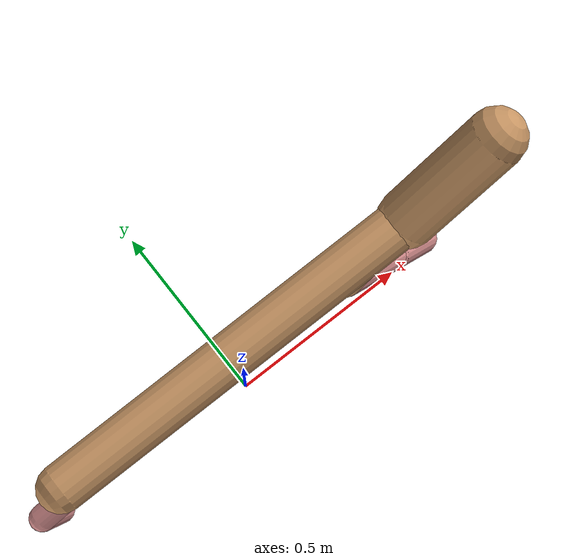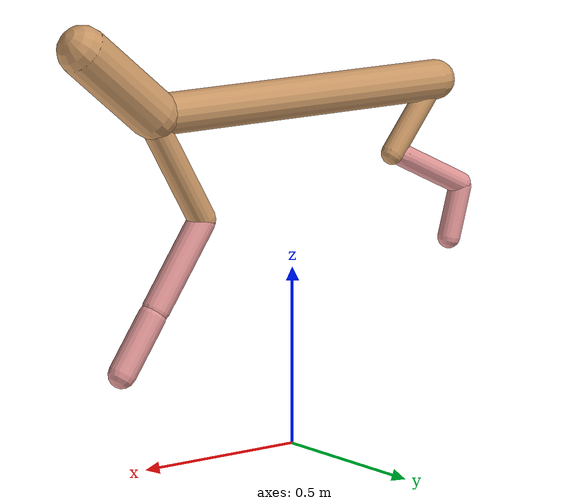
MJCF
<mujoco model="cheetah">
  <compiler angle="radian" coordinate="local" inertiafromgeom="true" settotalmass="14" />
  <default>
    <joint armature=".1" damping=".01" limited="true" solimplimit="0 .8 .03" solreflimit=".02 1" stiffness="8" />
    <geom conaffinity="0" condim="3" contype="1" friction="0.8 .1 .1" rgba="0.8 0.6 .4 1" solimp="0.0 0.8 0.01" solref="0.02 1" />
    <motor ctrllimited="true" ctrlrange="-1 1" />
  </default>
  <size nstack="300000" nuser_geom="1" />
  <option gravity="0 0 -9.81" timestep="0.01" />
  <worldbody>
    <body name="torso" pos="0.0 0.0 0.9732092007749268">
      <joint armature="0" axis="1 0 0" damping="0" limited="false" name="ignorex" pos="0 0 0" stiffness="0" type="slide" />
      <joint armature="0" axis="0 0 1" damping="0" limited="false" name="ignorez" pos="0 0 0" stiffness="0" type="slide" />
      <joint armature="0" axis="0 1 0" damping="0" limited="false" name="ignorey" pos="0 0 0" stiffness="0" type="hinge" />
      <geom fromto="-0.5 0.0 0.0 0.4836052410464676 0.0 0.0" name="torso" size="0.05677341411952814" type="capsule" />
      <geom axisangle="0 1 0 .87" name="head" pos="0.5836052410464676 0.0 0.1" size="0.06967576945922527 0.15" type="capsule" />

      <body name="bthigh" pos="-.5 0 0">
        <joint axis="0 1 0" damping="6" name="bthigh" pos="0 0 0" range="-.52 1.05" stiffness="240" type="hinge" />
        <geom axisangle="0 1 0 -3.8" name="bthigh" pos="0.08042437770675645 0.0 -0.10455169101878338" size="0.0322 0.11289359225682191" type="capsule" />
        <body name="bshin" pos="0.12084875541351288 0.0 -0.19910338203756675">
          <joint axis="0 1 0" damping="4.5" name="bshin" pos="0 0 0" range="-.785 .785" stiffness="180" type="hinge" />
          <geom axisangle="0 1 0 -2.03" name="bshin" pos="-0.11029291990603927 0.0 -0.05514645995301964" rgba="0.9 0.6 0.6 1" size="0.0322 0.11678647474843645" type="capsule" />
          <body name="bfoot" pos="-0.22058583981207855 0.0 -0.11029291990603927">
            <joint axis="0 1 0" damping="3" name="bfoot" pos="0 0 0" range="-.4 .785" stiffness="120" type="hinge" />
            <geom axisangle="0 1 0 -.27" name="bfoot" pos="0.0238501495752374 0.0 -0.07711548362660094" rgba="0.9 0.6 0.6 1" size="0.0322 0.07318619084235352" type="capsule" />
            <inertial mass="10" />
          </body>
        </body>
      </body>
      <body name="fthigh" pos="0.4836052410464676 0.0 0.0">
        <joint axis="0 1 0" damping="4.5" name="fthigh" pos="0 0 0" range="-1.5 0.8" stiffness="180" type="hinge" />
        <geom axisangle="0 1 0 .52" name="fthigh" pos="-0.08915174960622535 0.0 -0.15283157075352913" size="0.03908142377699188 0.17100922981492184" type="capsule" />
        <body name="fshin" pos="-0.1783034992124507 0.0 -0.30566314150705826">
          <joint axis="0 1 0" damping="3" name="fshin" pos="0 0 0" range="-1.2 1.1" stiffness="120" type="hinge" />
          <geom axisangle="0 1 0 -.6" name="fshin" pos="0.08273630655373553 0.0 -0.11455796292055688" rgba="0.9 0.6 0.6 1" size="0.03908142377699188 0.13629307037880986" type="capsule" />
          <body name="ffoot" pos="0.16547261310747105 0.0 -0.22911592584111376">
            <joint axis="0 1 0" damping="1.5" name="ffoot" pos="0 0 0" range="-3.1 -0.3" stiffness="60" type="hinge" />
            <geom axisangle="0 1 0 -.6" name="ffoot" pos="0.05581777871705176 0.0 -0.08682765578208053" rgba="0.9 0.6 0.6 1" size="0.03908142377699188 0.09000485779732728" type="capsule" />
            <inertial mass="10" />
          </body>
        </body>
      </body>
    </body>
  </worldbody>
  <actuator>
    <motor gear="120" joint="bthigh" name="bthigh" />
    <motor gear="90" joint="bshin" name="bshin" />
    <motor gear="60" joint="bfoot" name="bfoot" />
    <motor gear="120" joint="fthigh" name="fthigh" />
    <motor gear="60" joint="fshin" name="fshin" />
    <motor gear="30" joint="ffoot" name="ffoot" />
  </actuator>
</mujoco>
